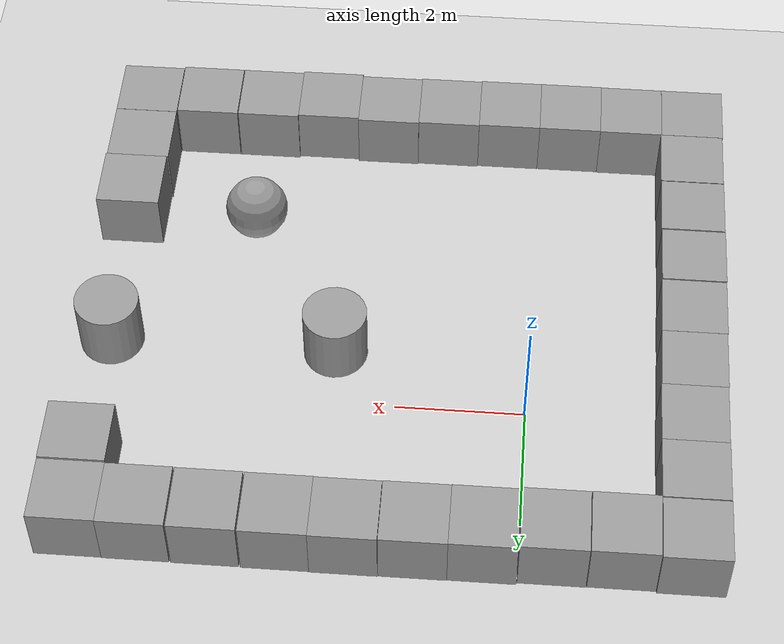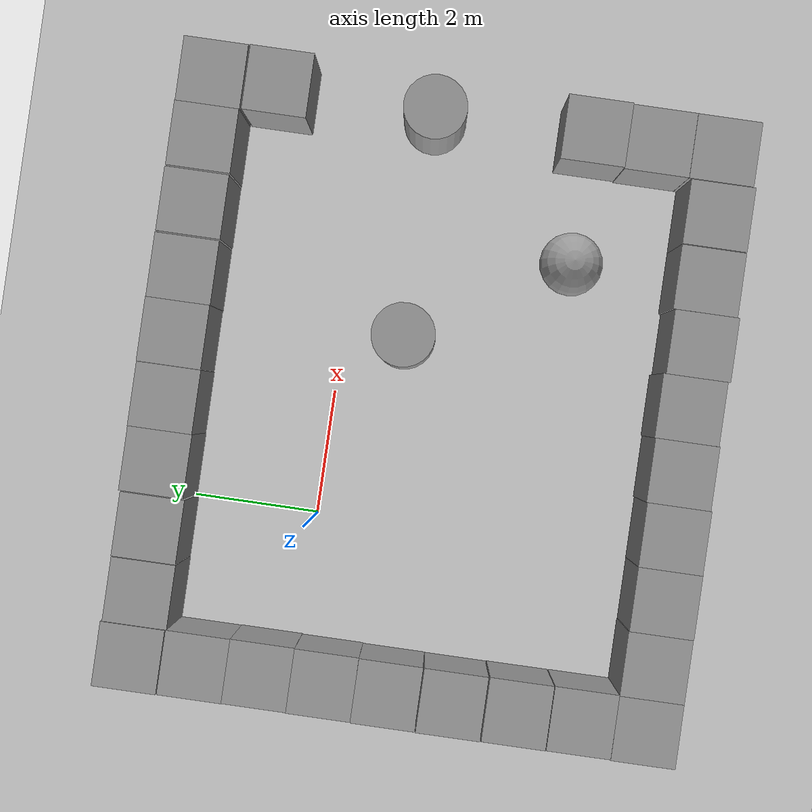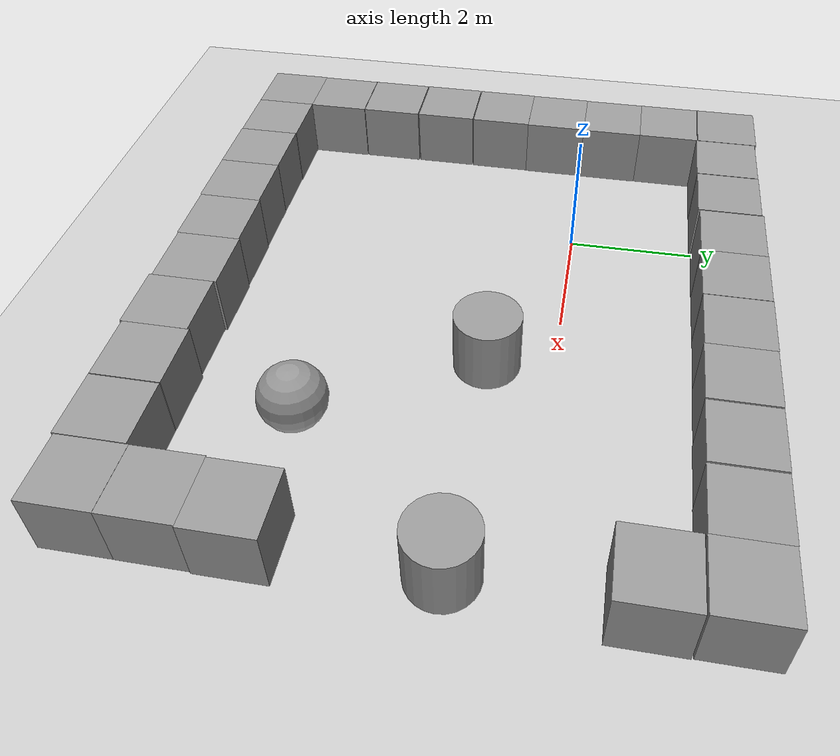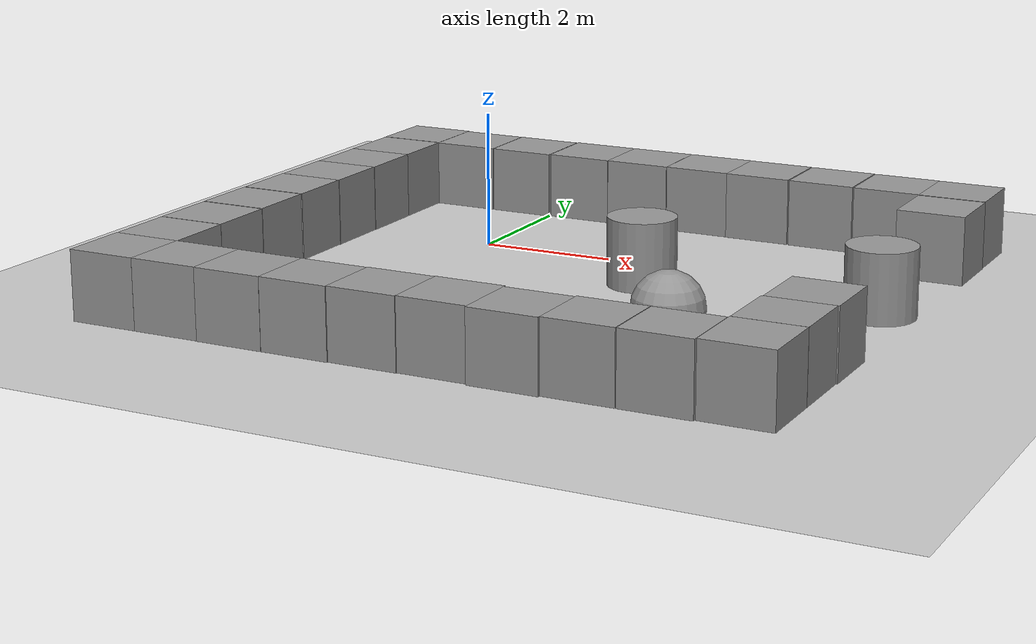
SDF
<sdf version="1.4">
 <world name="default">
  <light name="sun" type="directional">
   <pose>0 0 10 0 -0 0</pose>
   <diffuse>0.8 0.8 0.8 1</diffuse>
   <specular>0.2 0.2 0.2 1</specular>
   <attenuation>
    <range>1000</range>
    <constant>0.9</constant>
    <linear>0.01</linear>
    <quadratic>0.001</quadratic>
   </attenuation>
   <direction>-0.5 0.1 -0.9</direction>
  </light>
  <model name="ground_plane">
   <static>1</static>
   <link name="link">
    <collision name="collision">
     <geometry><plane><normal>0 0 1</normal><size>100 100</size></plane></geometry>
     <surface><friction><ode><mu>100</mu><mu2>50</mu2></ode></friction></surface>
    </collision>
    <visual name="visual">
     <cast_shadows>0</cast_shadows>
     <geometry><plane><normal>0 0 1</normal><size>100 100</size></plane></geometry>
     <material>
      <script><uri>file://media/materials/scripts/gazebo.material</uri><name>Gazebo/Grey</name></script>
     </material>
    </visual>
    <velocity_decay><linear>0</linear><angular>0</angular></velocity_decay>
   </link>
  </model>
  <physics type="ode">
   <max_step_size>0.001</max_step_size>
   <real_time_factor>1</real_time_factor>
   <real_time_update_rate>1000</real_time_update_rate>
   <gravity>0 0 -9.8</gravity>
  </physics>
  <scene><ambient>0.4 0.4 0.4 1</ambient><background>0.7 0.7 0.7 1</background><shadows>1</shadows></scene>
  <spherical_coordinates>
   <surface_model>EARTH_WGS84</surface_model>
   <latitude_deg>0</latitude_deg>
   <longitude_deg>0</longitude_deg>
   <elevation>0</elevation>
   <heading_deg>0</heading_deg>
  </spherical_coordinates>
  <model name="unit_box_3_0">
   <pose>-1.50101 2.45869 0.5 0 -0 0</pose>
   <link name="link">
    <inertial>
     <mass>1</mass>
     <inertia><ixx>1</ixx><ixy>0</ixy><ixz>0</ixz><iyy>1</iyy><iyz>0</iyz><izz>1</izz></inertia>
    </inertial>
    <collision name="collision"><geometry><box><size>1 1 1</size></box></geometry></collision>
    <visual name="visual">
     <geometry><box><size>1 1 1</size></box></geometry>
     <material>
      <script><uri>file://media/materials/scripts/gazebo.material</uri><name>Gazebo/Grey</name></script>
     </material>
    </visual>
    <velocity_decay><linear>0</linear><angular>0</angular></velocity_decay>
   </link>
   <static>0</static>
  </model>
  <model name="unit_box_4_0">
   <pose>-0.491208 2.46412 0.5 0 -0 0</pose>
   <link name="link">
    <inertial>
     <mass>1</mass>
     <inertia><ixx>1</ixx><ixy>0</ixy><ixz>0</ixz><iyy>1</iyy><iyz>0</iyz><izz>1</izz></inertia>
    </inertial>
    <collision name="collision"><geometry><box><size>1 1 1</size></box></geometry></collision>
    <visual name="visual">
     <geometry><box><size>1 1 1</size></box></geometry>
     <material>
      <script><uri>file://media/materials/scripts/gazebo.material</uri><name>Gazebo/Grey</name></script>
     </material>
    </visual>
    <velocity_decay><linear>0</linear><angular>0</angular></velocity_decay>
   </link>
   <static>0</static>
  </model>
  <model name="unit_box_5">
   <pose>0.523393 2.49171 0.5 0 -0 7.5e-05</pose>
   <link name="link">
    <inertial>
     <mass>1</mass>
     <inertia><ixx>1</ixx><ixy>0</ixy><ixz>0</ixz><iyy>1</iyy><iyz>0</iyz><izz>1</izz></inertia>
    </inertial>
    <collision name="collision"><geometry><box><size>1 1 1</size></box></geometry></collision>
    <visual name="visual">
     <geometry><box><size>1 1 1</size></box></geometry>
     <material>
      <script><uri>file://media/materials/scripts/gazebo.material</uri><name>Gazebo/Grey</name></script>
     </material>
    </visual>
    <velocity_decay><linear>0</linear><angular>0</angular></velocity_decay>
   </link>
   <static>0</static>
  </model>
  <model name="unit_box_6">
   <pose>1.5234 2.49675 0.5 0 -0 7.6e-05</pose>
   <link name="link">
    <inertial>
     <mass>1</mass>
     <inertia><ixx>1</ixx><ixy>0</ixy><ixz>0</ixz><iyy>1</iyy><iyz>0</iyz><izz>1</izz></inertia>
    </inertial>
    <collision name="collision"><geometry><box><size>1 1 1</size></box></geometry></collision>
    <visual name="visual">
     <geometry><box><size>1 1 1</size></box></geometry>
     <material>
      <script><uri>file://media/materials/scripts/gazebo.material</uri><name>Gazebo/Grey</name></script>
     </material>
    </visual>
    <velocity_decay><linear>0</linear><angular>0</angular></velocity_decay>
   </link>
   <static>0</static>
  </model>
  <model name="unit_box_11">
   <pose>2.5287 2.50226 0.5 0 0 -1.4e-05</pose>
   <link name="link">
    <inertial>
     <mass>1</mass>
     <inertia><ixx>1</ixx><ixy>0</ixy><ixz>0</ixz><iyy>1</iyy><iyz>0</iyz><izz>1</izz></inertia>
    </inertial>
    <collision name="collision"><geometry><box><size>1 1 1</size></box></geometry></collision>
    <visual name="visual">
     <geometry><box><size>1 1 1</size></box></geometry>
     <material>
      <script><uri>file://media/materials/scripts/gazebo.material</uri><name>Gazebo/Grey</name></script>
     </material>
    </visual>
    <velocity_decay><linear>0</linear><angular>0</angular></velocity_decay>
   </link>
   <static>0</static>
  </model>
  <model name="unit_box_12">
   <pose>3.5287 2.4957 0.5 0 0 -1.5e-05</pose>
   <link name="link">
    <inertial>
     <mass>1</mass>
     <inertia><ixx>1</ixx><ixy>0</ixy><ixz>0</ixz><iyy>1</iyy><iyz>0</iyz><izz>1</izz></inertia>
    </inertial>
    <collision name="collision"><geometry><box><size>1 1 1</size></box></geometry></collision>
    <visual name="visual">
     <geometry><box><size>1 1 1</size></box></geometry>
     <material>
      <script><uri>file://media/materials/scripts/gazebo.material</uri><name>Gazebo/Grey</name></script>
     </material>
    </visual>
    <velocity_decay><linear>0</linear><angular>0</angular></velocity_decay>
   </link>
   <static>0</static>
  </model>
  <model name="unit_box_13">
   <pose>4.5511 2.48888 0.5 0 -0 0</pose>
   <link name="link">
    <inertial>
     <mass>1</mass>
     <inertia><ixx>1</ixx><ixy>0</ixy><ixz>0</ixz><iyy>1</iyy><iyz>0</iyz><izz>1</izz></inertia>
    </inertial>
    <collision name="collision"><geometry><box><size>1 1 1</size></box></geometry></collision>
    <visual name="visual">
     <geometry><box><size>1 1 1</size></box></geometry>
     <material>
      <script><uri>file://media/materials/scripts/gazebo.material</uri><name>Gazebo/Grey</name></script>
     </material>
    </visual>
    <velocity_decay><linear>0</linear><angular>0</angular></velocity_decay>
   </link>
   <static>0</static>
  </model>
  <model name="unit_box_14">
   <pose>5.57378 2.48206 0.5 0 0 -1.3e-05</pose>
   <link name="link">
    <inertial>
     <mass>1</mass>
     <inertia><ixx>1</ixx><ixy>0</ixy><ixz>0</ixz><iyy>1</iyy><iyz>0</iyz><izz>1</izz></inertia>
    </inertial>
    <collision name="collision"><geometry><box><size>1 1 1</size></box></geometry></collision>
    <visual name="visual">
     <geometry><box><size>1 1 1</size></box></geometry>
     <material>
      <script><uri>file://media/materials/scripts/gazebo.material</uri><name>Gazebo/Grey</name></script>
     </material>
    </visual>
    <velocity_decay><linear>0</linear><angular>0</angular></velocity_decay>
   </link>
   <static>0</static>
  </model>
  <model name="unit_box_15">
   <pose>6.57378 2.4755 0.5 0 0 -1.4e-05</pose>
   <link name="link">
    <inertial>
     <mass>1</mass>
     <inertia><ixx>1</ixx><ixy>0</ixy><ixz>0</ixz><iyy>1</iyy><iyz>0</iyz><izz>1</izz></inertia>
    </inertial>
    <collision name="collision"><geometry><box><size>1 1 1</size></box></geometry></collision>
    <visual name="visual">
     <geometry><box><size>1 1 1</size></box></geometry>
     <material>
      <script><uri>file://media/materials/scripts/gazebo.material</uri><name>Gazebo/Grey</name></script>
     </material>
    </visual>
    <velocity_decay><linear>0</linear><angular>0</angular></velocity_decay>
   </link>
   <static>0</static>
  </model>
  <model name="unit_box_18">
   <pose>-2.50713 2.48468 0.5 0 -0 0</pose>
   <link name="link">
    <inertial>
     <mass>1</mass>
     <inertia><ixx>1</ixx><ixy>0</ixy><ixz>0</ixz><iyy>1</iyy><iyz>0</iyz><izz>1</izz></inertia>
    </inertial>
    <collision name="collision"><geometry><box><size>1 1 1</size></box></geometry></collision>
    <visual name="visual">
     <geometry><box><size>1 1 1</size></box></geometry>
     <material>
      <script><uri>file://media/materials/scripts/gazebo.material</uri><name>Gazebo/Grey</name></script>
     </material>
    </visual>
    <velocity_decay><linear>0</linear><angular>0</angular></velocity_decay>
   </link>
   <static>0</static>
  </model>
  <model name="unit_box_19">
   <pose>-2.50214 1.47252 0.5 0 0 -0.000111</pose>
   <link name="link">
    <inertial>
     <mass>1</mass>
     <inertia><ixx>1</ixx><ixy>0</ixy><ixz>0</ixz><iyy>1</iyy><iyz>0</iyz><izz>1</izz></inertia>
    </inertial>
    <collision name="collision"><geometry><box><size>1 1 1</size></box></geometry></collision>
    <visual name="visual">
     <geometry><box><size>1 1 1</size></box></geometry>
     <material>
      <script><uri>file://media/materials/scripts/gazebo.material</uri><name>Gazebo/Grey</name></script>
     </material>
    </visual>
    <velocity_decay><linear>0</linear><angular>0</angular></velocity_decay>
   </link>
   <static>0</static>
  </model>
  <model name="unit_box_20">
   <pose>-2.49782 0.47246 0.5 0 0 -7.2e-05</pose>
   <link name="link">
    <inertial>
     <mass>1</mass>
     <inertia><ixx>1</ixx><ixy>0</ixy><ixz>0</ixz><iyy>1</iyy><iyz>0</iyz><izz>1</izz></inertia>
    </inertial>
    <collision name="collision"><geometry><box><size>1 1 1</size></box></geometry></collision>
    <visual name="visual">
     <geometry><box><size>1 1 1</size></box></geometry>
     <material>
      <script><uri>file://media/materials/scripts/gazebo.material</uri><name>Gazebo/Grey</name></script>
     </material>
    </visual>
    <velocity_decay><linear>0</linear><angular>0</angular></velocity_decay>
   </link>
   <static>0</static>
  </model>
  <model name="unit_box_21">
   <pose>-2.50606 -0.527561 0.5 0 0 -9.9e-05</pose>
   <link name="link">
    <inertial>
     <mass>1</mass>
     <inertia><ixx>1</ixx><ixy>0</ixy><ixz>0</ixz><iyy>1</iyy><iyz>0</iyz><izz>1</izz></inertia>
    </inertial>
    <collision name="collision"><geometry><box><size>1 1 1</size></box></geometry></collision>
    <visual name="visual">
     <geometry><box><size>1 1 1</size></box></geometry>
     <material>
      <script><uri>file://media/materials/scripts/gazebo.material</uri><name>Gazebo/Grey</name></script>
     </material>
    </visual>
    <velocity_decay><linear>0</linear><angular>0</angular></velocity_decay>
   </link>
   <static>0</static>
  </model>
  <model name="unit_box_22">
   <pose>-2.51509 -1.52782 0.5 0 -0 -0.000212</pose>
   <link name="link">
    <inertial>
     <mass>1</mass>
     <inertia><ixx>1</ixx><ixy>0</ixy><ixz>0</ixz><iyy>1</iyy><iyz>0</iyz><izz>1</izz></inertia>
    </inertial>
    <collision name="collision"><geometry><box><size>1 1 1</size></box></geometry></collision>
    <visual name="visual">
     <geometry><box><size>1 1 1</size></box></geometry>
     <material>
      <script><uri>file://media/materials/scripts/gazebo.material</uri><name>Gazebo/Grey</name></script>
     </material>
    </visual>
    <velocity_decay><linear>0</linear><angular>0</angular></velocity_decay>
   </link>
   <static>0</static>
  </model>
  <model name="unit_box_23">
   <pose>-2.52077 -2.54424 0.5 0 -0 0</pose>
   <link name="link">
    <inertial>
     <mass>1</mass>
     <inertia><ixx>1</ixx><ixy>0</ixy><ixz>0</ixz><iyy>1</iyy><iyz>0</iyz><izz>1</izz></inertia>
    </inertial>
    <collision name="collision"><geometry><box><size>1 1 1</size></box></geometry></collision>
    <visual name="visual">
     <geometry><box><size>1 1 1</size></box></geometry>
     <material>
      <script><uri>file://media/materials/scripts/gazebo.material</uri><name>Gazebo/Grey</name></script>
     </material>
    </visual>
    <velocity_decay><linear>0</linear><angular>0</angular></velocity_decay>
   </link>
   <static>0</static>
  </model>
  <model name="unit_box_24">
   <pose>-2.51601 -3.56277 0.5 0 -0 0</pose>
   <link name="link">
    <inertial>
     <mass>1</mass>
     <inertia><ixx>1</ixx><ixy>0</ixy><ixz>0</ixz><iyy>1</iyy><iyz>0</iyz><izz>1</izz></inertia>
    </inertial>
    <collision name="collision"><geometry><box><size>1 1 1</size></box></geometry></collision>
    <visual name="visual">
     <geometry><box><size>1 1 1</size></box></geometry>
     <material>
      <script><uri>file://media/materials/scripts/gazebo.material</uri><name>Gazebo/Grey</name></script>
     </material>
    </visual>
    <velocity_decay><linear>0</linear><angular>0</angular></velocity_decay>
   </link>
   <static>0</static>
  </model>
  <model name="unit_box_25">
   <pose>-2.51191 -4.57124 0.5 -0 -0 -5.8e-05</pose>
   <link name="link">
    <inertial>
     <mass>1</mass>
     <inertia><ixx>1</ixx><ixy>0</ixy><ixz>0</ixz><iyy>1</iyy><iyz>0</iyz><izz>1</izz></inertia>
    </inertial>
    <collision name="collision"><geometry><box><size>1 1 1</size></box></geometry></collision>
    <visual name="visual">
     <geometry><box><size>1 1 1</size></box></geometry>
     <material>
      <script><uri>file://media/materials/scripts/gazebo.material</uri><name>Gazebo/Grey</name></script>
     </material>
    </visual>
    <velocity_decay><linear>0</linear><angular>0</angular></velocity_decay>
   </link>
   <static>0</static>
  </model>
  <model name="unit_box_26">
   <pose>-2.5213 -5.57185 0.5 0 -0 0.000269</pose>
   <link name="link">
    <inertial>
     <mass>1</mass>
     <inertia><ixx>1</ixx><ixy>0</ixy><ixz>0</ixz><iyy>1</iyy><iyz>0</iyz><izz>1</izz></inertia>
    </inertial>
    <collision name="collision"><geometry><box><size>1 1 1</size></box></geometry></collision>
    <visual name="visual">
     <geometry><box><size>1 1 1</size></box></geometry>
     <material>
      <script><uri>file://media/materials/scripts/gazebo.material</uri><name>Gazebo/Grey</name></script>
     </material>
    </visual>
    <velocity_decay><linear>0</linear><angular>0</angular></velocity_decay>
   </link>
   <static>0</static>
  </model>
  <model name="unit_box_27">
   <pose>-1.52126 -5.57122 0.5 0 -0 0.000308</pose>
   <link name="link">
    <inertial>
     <mass>1</mass>
     <inertia><ixx>1</ixx><ixy>0</ixy><ixz>0</ixz><iyy>1</iyy><iyz>0</iyz><izz>1</izz></inertia>
    </inertial>
    <collision name="collision"><geometry><box><size>1 1 1</size></box></geometry></collision>
    <visual name="visual">
     <geometry><box><size>1 1 1</size></box></geometry>
     <material>
      <script><uri>file://media/materials/scripts/gazebo.material</uri><name>Gazebo/Grey</name></script>
     </material>
    </visual>
    <velocity_decay><linear>0</linear><angular>0</angular></velocity_decay>
   </link>
   <static>0</static>
  </model>
  <model name="unit_box_28">
   <pose>-0.521248 -5.57815 0.5 0 -0 0.000317</pose>
   <link name="link">
    <inertial>
     <mass>1</mass>
     <inertia><ixx>1</ixx><ixy>0</ixy><ixz>0</ixz><iyy>1</iyy><iyz>0</iyz><izz>1</izz></inertia>
    </inertial>
    <collision name="collision"><geometry><box><size>1 1 1</size></box></geometry></collision>
    <visual name="visual">
     <geometry><box><size>1 1 1</size></box></geometry>
     <material>
      <script><uri>file://media/materials/scripts/gazebo.material</uri><name>Gazebo/Grey</name></script>
     </material>
    </visual>
    <velocity_decay><linear>0</linear><angular>0</angular></velocity_decay>
   </link>
   <static>0</static>
  </model>
  <model name="unit_box_29">
   <pose>0.478755 -5.57527 0.5 0 -0 0.000322</pose>
   <link name="link">
    <inertial>
     <mass>1</mass>
     <inertia><ixx>1</ixx><ixy>0</ixy><ixz>0</ixz><iyy>1</iyy><iyz>0</iyz><izz>1</izz></inertia>
    </inertial>
    <collision name="collision"><geometry><box><size>1 1 1</size></box></geometry></collision>
    <visual name="visual">
     <geometry><box><size>1 1 1</size></box></geometry>
     <material>
      <script><uri>file://media/materials/scripts/gazebo.material</uri><name>Gazebo/Grey</name></script>
     </material>
    </visual>
    <velocity_decay><linear>0</linear><angular>0</angular></velocity_decay>
   </link>
   <static>0</static>
  </model>
  <model name="unit_box_30">
   <pose>1.47876 -5.55884 0.5 0 -0 0.000315</pose>
   <link name="link">
    <inertial>
     <mass>1</mass>
     <inertia><ixx>1</ixx><ixy>0</ixy><ixz>0</ixz><iyy>1</iyy><iyz>0</iyz><izz>1</izz></inertia>
    </inertial>
    <collision name="collision"><geometry><box><size>1 1 1</size></box></geometry></collision>
    <visual name="visual">
     <geometry><box><size>1 1 1</size></box></geometry>
     <material>
      <script><uri>file://media/materials/scripts/gazebo.material</uri><name>Gazebo/Grey</name></script>
     </material>
    </visual>
    <velocity_decay><linear>0</linear><angular>0</angular></velocity_decay>
   </link>
   <static>0</static>
  </model>
  <model name="unit_box_31">
   <pose>2.47877 -5.54259 0.5 0 -0 0.000325</pose>
   <link name="link">
    <inertial>
     <mass>1</mass>
     <inertia><ixx>1</ixx><ixy>0</ixy><ixz>0</ixz><iyy>1</iyy><iyz>0</iyz><izz>1</izz></inertia>
    </inertial>
    <collision name="collision"><geometry><box><size>1 1 1</size></box></geometry></collision>
    <visual name="visual">
     <geometry><box><size>1 1 1</size></box></geometry>
     <material>
      <script><uri>file://media/materials/scripts/gazebo.material</uri><name>Gazebo/Grey</name></script>
     </material>
    </visual>
    <velocity_decay><linear>0</linear><angular>0</angular></velocity_decay>
   </link>
   <static>0</static>
  </model>
  <model name="unit_box_32">
   <pose>3.47882 -5.58015 0.5 0 -0 0.000364</pose>
   <link name="link">
    <inertial>
     <mass>1</mass>
     <inertia><ixx>1</ixx><ixy>0</ixy><ixz>0</ixz><iyy>1</iyy><iyz>0</iyz><izz>1</izz></inertia>
    </inertial>
    <collision name="collision"><geometry><box><size>1 1 1</size></box></geometry></collision>
    <visual name="visual">
     <geometry><box><size>1 1 1</size></box></geometry>
     <material>
      <script><uri>file://media/materials/scripts/gazebo.material</uri><name>Gazebo/Grey</name></script>
     </material>
    </visual>
    <velocity_decay><linear>0</linear><angular>0</angular></velocity_decay>
   </link>
   <static>0</static>
  </model>
  <model name="unit_box_33">
   <pose>4.47888 -5.54619 0.5 0 -0 0.000219</pose>
   <link name="link">
    <inertial>
     <mass>1</mass>
     <inertia><ixx>1</ixx><ixy>0</ixy><ixz>0</ixz><iyy>1</iyy><iyz>0</iyz><izz>1</izz></inertia>
    </inertial>
    <collision name="collision"><geometry><box><size>1 1 1</size></box></geometry></collision>
    <visual name="visual">
     <geometry><box><size>1 1 1</size></box></geometry>
     <material>
      <script><uri>file://media/materials/scripts/gazebo.material</uri><name>Gazebo/Grey</name></script>
     </material>
    </visual>
    <velocity_decay><linear>0</linear><angular>0</angular></velocity_decay>
   </link>
   <static>0</static>
  </model>
  <model name="unit_box_34">
   <pose>5.49127 -5.54664 0.5 0 -0 0</pose>
   <link name="link">
    <inertial>
     <mass>1</mass>
     <inertia><ixx>1</ixx><ixy>0</ixy><ixz>0</ixz><iyy>1</iyy><iyz>0</iyz><izz>1</izz></inertia>
    </inertial>
    <collision name="collision"><geometry><box><size>1 1 1</size></box></geometry></collision>
    <visual name="visual">
     <geometry><box><size>1 1 1</size></box></geometry>
     <material>
      <script><uri>file://media/materials/scripts/gazebo.material</uri><name>Gazebo/Grey</name></script>
     </material>
    </visual>
    <velocity_decay><linear>0</linear><angular>0</angular></velocity_decay>
   </link>
   <static>0</static>
  </model>
  <model name="unit_box_35">
   <pose>6.49963 -5.51015 0.5 0 -0 0</pose>
   <link name="link">
    <inertial>
     <mass>1</mass>
     <inertia><ixx>1</ixx><ixy>0</ixy><ixz>0</ixz><iyy>1</iyy><iyz>0</iyz><izz>1</izz></inertia>
    </inertial>
    <collision name="collision"><geometry><box><size>1 1 1</size></box></geometry></collision>
    <visual name="visual">
     <geometry><box><size>1 1 1</size></box></geometry>
     <material>
      <script><uri>file://media/materials/scripts/gazebo.material</uri><name>Gazebo/Grey</name></script>
     </material>
    </visual>
    <velocity_decay><linear>0</linear><angular>0</angular></velocity_decay>
   </link>
   <static>0</static>
  </model>
  <model name="unit_box_36">
   <pose>6.5011 -4.50867 0.5 -0 -0 -3.7e-05</pose>
   <link name="link">
    <inertial>
     <mass>1</mass>
     <inertia><ixx>1</ixx><ixy>0</ixy><ixz>0</ixz><iyy>1</iyy><iyz>0</iyz><izz>1</izz></inertia>
    </inertial>
    <collision name="collision"><geometry><box><size>1 1 1</size></box></geometry></collision>
    <visual name="visual">
     <geometry><box><size>1 1 1</size></box></geometry>
     <material>
      <script><uri>file://media/materials/scripts/gazebo.material</uri><name>Gazebo/Grey</name></script>
     </material>
    </visual>
    <velocity_decay><linear>0</linear><angular>0</angular></velocity_decay>
   </link>
   <static>0</static>
  </model>
  <model name="unit_box_37">
   <pose>6.5205 -3.50867 0.5 0 0 -3.7e-05</pose>
   <link name="link">
    <inertial>
     <mass>1</mass>
     <inertia><ixx>1</ixx><ixy>0</ixy><ixz>0</ixz><iyy>1</iyy><iyz>0</iyz><izz>1</izz></inertia>
    </inertial>
    <collision name="collision"><geometry><box><size>1 1 1</size></box></geometry></collision>
    <visual name="visual">
     <geometry><box><size>1 1 1</size></box></geometry>
     <material>
      <script><uri>file://media/materials/scripts/gazebo.material</uri><name>Gazebo/Grey</name></script>
     </material>
    </visual>
    <velocity_decay><linear>0</linear><angular>0</angular></velocity_decay>
   </link>
   <static>0</static>
  </model>
  <model name="unit_box_38">
   <pose>6.58157 1.45048 0.5 0 -0 0</pose>
   <link name="link">
    <inertial>
     <mass>1</mass>
     <inertia><ixx>1</ixx><ixy>0</ixy><ixz>0</ixz><iyy>1</iyy><iyz>0</iyz><izz>1</izz></inertia>
    </inertial>
    <collision name="collision"><geometry><box><size>1 1 1</size></box></geometry></collision>
    <visual name="visual">
     <geometry><box><size>1 1 1</size></box></geometry>
     <material>
      <script><uri>file://media/materials/scripts/gazebo.material</uri><name>Gazebo/Grey</name></script>
     </material>
    </visual>
    <velocity_decay><linear>0</linear><angular>0</angular></velocity_decay>
   </link>
   <static>0</static>
  </model>
  <model name="unit_cylinder_1">
   <pose>6.53467 -1 0.499998 1e-06 -0 0</pose>
   <link name="link">
    <inertial>
     <mass>1</mass>
     <inertia><ixx>1</ixx><ixy>0</ixy><ixz>0</ixz><iyy>1</iyy><iyz>0</iyz><izz>1</izz></inertia>
    </inertial>
    <collision name="collision">
     <geometry><cylinder><radius>0.5</radius><length>1</length></cylinder></geometry>
    </collision>
    <visual name="visual">
     <geometry><cylinder><radius>0.5</radius><length>1</length></cylinder></geometry>
     <material>
      <script><uri>file://media/materials/scripts/gazebo.material</uri><name>Gazebo/Grey</name></script>
     </material>
    </visual>
    <velocity_decay><linear>0</linear><angular>0</angular></velocity_decay>
   </link>
   <static>0</static>
  </model>
  <model name="unit_cylinder_2">
   <pose>3 -1 0.499992 -1e-06 -0 0</pose>
   <link name="link">
    <inertial>
     <mass>1</mass>
     <inertia><ixx>1</ixx><ixy>0</ixy><ixz>0</ixz><iyy>1</iyy><iyz>0</iyz><izz>1</izz></inertia>
    </inertial>
    <collision name="collision">
     <geometry><cylinder><radius>0.5</radius><length>1</length></cylinder></geometry>
    </collision>
    <visual name="visual">
     <geometry><cylinder><radius>0.5</radius><length>1</length></cylinder></geometry>
     <material>
      <script><uri>file://media/materials/scripts/gazebo.material</uri><name>Gazebo/Grey</name></script>
     </material>
    </visual>
    <velocity_decay><linear>0</linear><angular>0</angular></velocity_decay>
   </link>
   <static>0</static>
  </model>
  <model name="unit_sphere_3">
   <pose>4.50575 -3.45843 0.5 0 -0 0</pose>
   <link name="link">
    <inertial>
     <mass>1</mass>
     <inertia><ixx>1</ixx><ixy>0</ixy><ixz>0</ixz><iyy>1</iyy><iyz>0</iyz><izz>1</izz></inertia>
    </inertial>
    <collision name="collision"><geometry><sphere><radius>0.5</radius></sphere></geometry></collision>
    <visual name="visual">
     <geometry><sphere><radius>0.5</radius></sphere></geometry>
     <material>
      <script><uri>file://media/materials/scripts/gazebo.material</uri><name>Gazebo/Grey</name></script>
     </material>
    </visual>
    <velocity_decay><linear>0</linear><angular>0</angular></velocity_decay>
   </link>
   <static>0</static>
  </model>
 </world>
</sdf>
